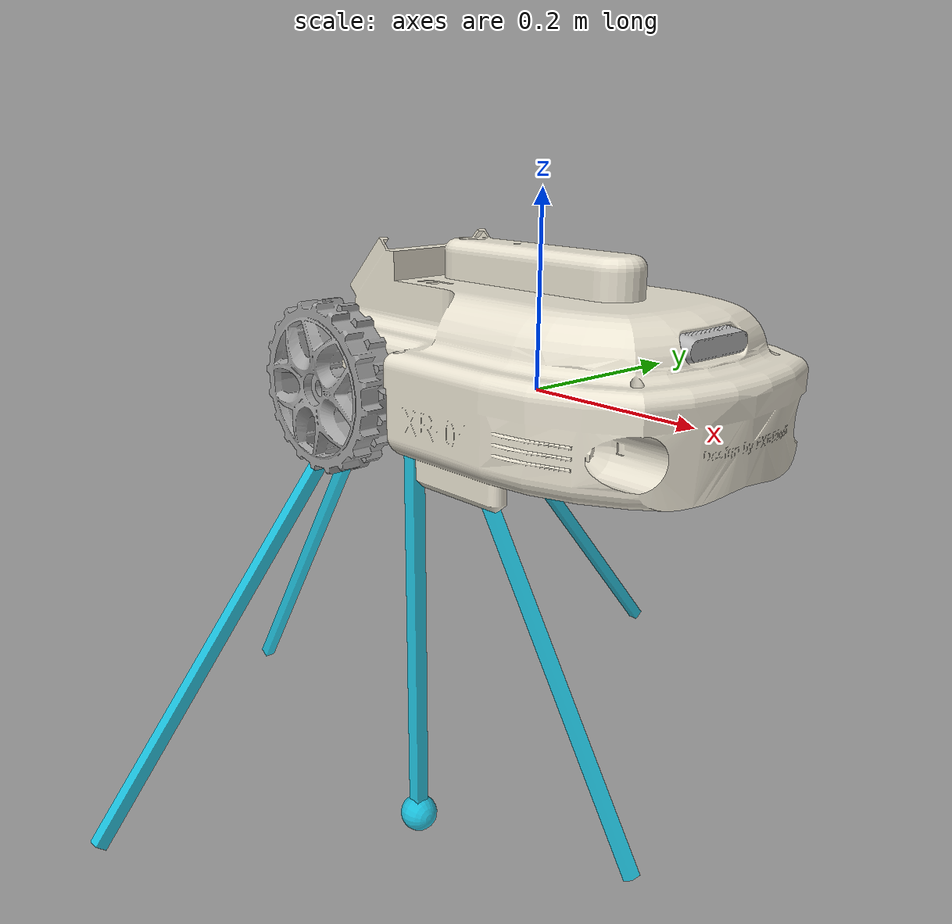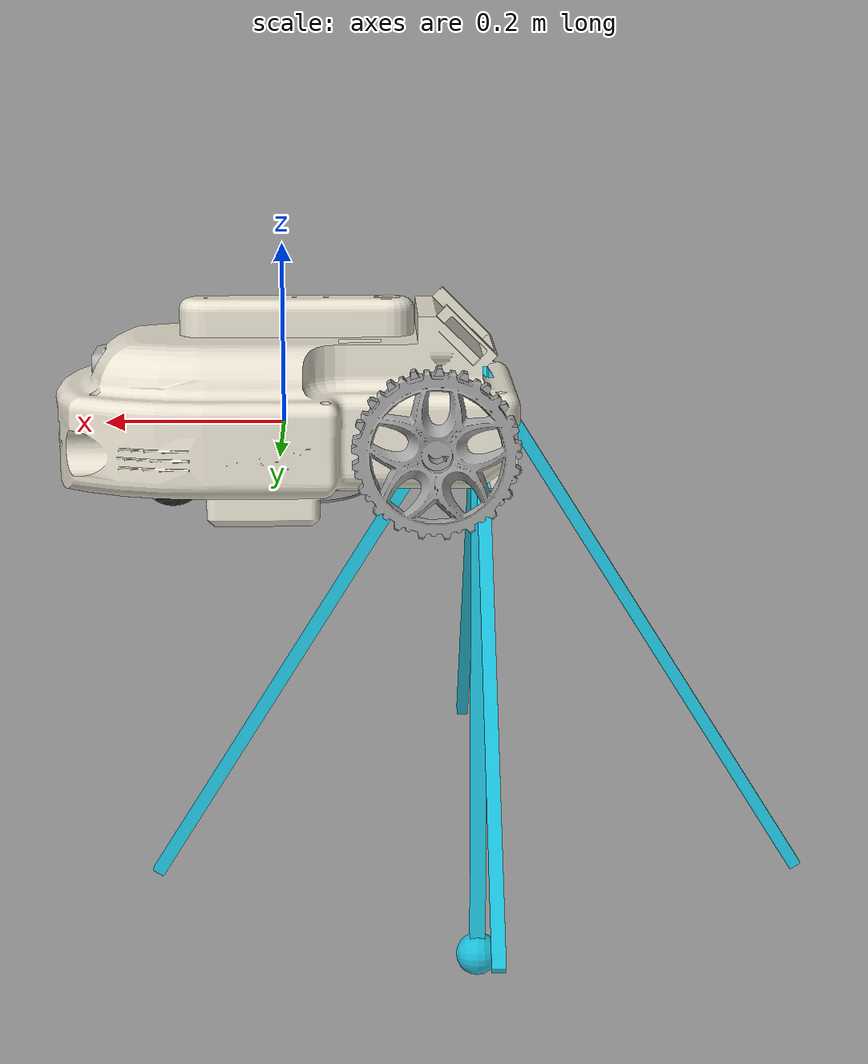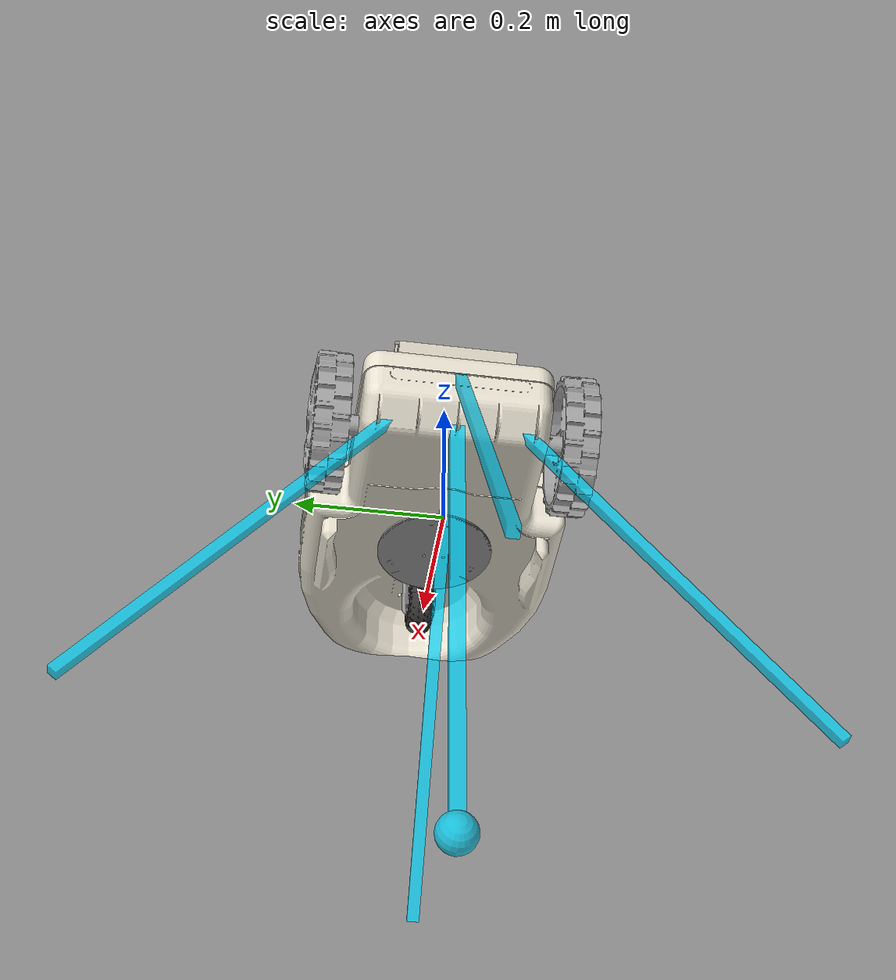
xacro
<?xml version="1.0" ?>
<!-- 機器人本體定義 (URDF) -->
<!-- 從 robot.urdf 轉換為 Xacro 格式，並新增 GPS link / base_footprint -->
<robot name="mower_robot" xmlns:xacro="http://www.ros.org/wiki/xacro">

  <!--  Material 定義                                                -->
  <material name="base_link_material">
    <color rgba="0.901961 0.878431 0.811765 1"/>
  </material>
  <material name="wheel_material">
    <color rgba="0.627451 0.627451 0.627451 1"/>
  </material>
  <material name="dark_material">
    <color rgba="0.207843 0.192157 0.192157 1"/>
  </material>
  <material name="grey_material">
    <color rgba="0.678431 0.678431 0.678431 1"/>
  </material>
  <material name="camera_material">
    <color rgba="0.701961 0.701961 0.701961 1"/>
  </material>
  <material name="black_material">
    <color rgba="0 0 0 1"/>
  </material>
  <material name="silver_material">
    <color rgba="0.6 0.6 0.6 1"/>
  </material>
  <material name="camera_direction_material">
    <color rgba="0 0.85 1 0.75"/>
  </material>

  <!--  base_footprint（Nav2 必要）                                  -->
  <link name="base_footprint"/>

  <joint name="base_footprint_joint" type="fixed">
    <!-- Rotate CAD frame so base_footprint +X is the mower forward direction. -->
    <origin xyz="0 0 0" rpy="0 0 1.5708"/>
    <parent link="base_footprint"/>
    <child link="base_link"/>
  </joint>

  <!--  base_link                                                    -->
  <link name="base_link">
    <inertial>
      <origin xyz="0 0 0" rpy="0 0 0"/>
      <mass value="5.0"/>
      <inertia ixx="0.1" ixy="0" ixz="0" iyy="0.1" iyz="0" izz="0.1"/>
    </inertial>
    <visual>
      <origin xyz="0.0145303 0.0155339 -0.0929528" rpy="0 -0 0"/>
      <geometry>
        <mesh filename="package://mower_description/mower_robot/assets/base_link.stl"/>
      </geometry>
      <material name="base_link_material"/>
    </visual>
    <collision>
      <origin xyz="0.0145303 0.0155339 -0.0929528" rpy="0 -0 0"/>
      <geometry>
        <mesh filename="package://mower_description/mower_robot/assets/base_link.stl"/>
      </geometry>
    </collision>
  </link>

  <!--  左輪 left_wheel_link                                        -->
  <link name="left_wheel_link">
    <inertial>
      <origin xyz="-3.1524e-07 9.95807e-06 -0.0428781" rpy="0 0 0"/>
      <mass value="0.368513"/>
      <inertia ixx="0.000961278" ixy="3.92e-09" ixz="6.596e-09"
               iyy="0.000961335" iyz="1.3009e-08" izz="0.00177481"/>
    </inertial>
    <visual>
      <origin xyz="0 0 -0.025531" rpy="0 -0 -0"/>
      <geometry>
        <mesh filename="package://mower_description/mower_robot/assets/left_wheel_link.stl"/>
      </geometry>
      <material name="wheel_material"/>
    </visual>
    <collision>
      <origin xyz="0 0 -0.025531" rpy="0 -0 -0"/>
      <geometry>
        <mesh filename="package://mower_description/mower_robot/assets/left_wheel_link.stl"/>
      </geometry>
    </collision>
  </link>

  <!-- Joint: base_link → left_wheel_link -->
  <!-- rpy x=+1.5708: 輪子朝外安裝，Z 軸向內，需用 0 0 -1 讓正速度=前進 -->
  <joint name="left_wheel_joint" type="continuous">
    <origin xyz="0.13253 0.165534 -0.00295275" rpy="1.5708 1.22081 -1.5708"/>
    <parent link="base_link"/>
    <child link="left_wheel_link"/>
    <axis xyz="0 0 -1"/>
    <limit effort="10" velocity="6"/>
  </joint>

  <!--  右輪 right_wheel_link                                       -->
  <link name="right_wheel_link">
    <inertial>
      <origin xyz="-3.1524e-07 9.95807e-06 -0.0428781" rpy="0 0 0"/>
      <mass value="0.368513"/>
      <inertia ixx="0.000961278" ixy="3.92e-09" ixz="6.596e-09"
               iyy="0.000961335" iyz="1.3009e-08" izz="0.00177481"/>
    </inertial>
    <visual>
      <origin xyz="0 0 -0.025531" rpy="0 -0 0"/>
      <geometry>
        <mesh filename="package://mower_description/mower_robot/assets/right_wheel_link.stl"/>
      </geometry>
      <material name="wheel_material"/>
    </visual>
    <collision>
      <origin xyz="0 0 -0.025531" rpy="0 -0 0"/>
      <geometry>
        <mesh filename="package://mower_description/mower_robot/assets/right_wheel_link.stl"/>
      </geometry>
    </collision>
  </link>

  <!-- Joint: base_link → right_wheel_link -->
  <!-- rpy x=-1.5708: 輪子朝外安裝（另一側），Z 軸向外，用 0 0 1 讓正速度=前進 -->
  <joint name="right_wheel_joint" type="continuous">
    <origin xyz="-0.10347 0.165534 -0.00295275" rpy="-1.5708 1.51106 -1.5708"/>
    <parent link="base_link"/>
    <child link="right_wheel_link"/>
    <axis xyz="0 0 1"/>
    <limit effort="10" velocity="6"/>
  </joint>

  <!--  caster_yaw_link                                             -->
  <link name="caster_yaw_link">
    <inertial>
      <origin xyz="-0.00894349 -1.10704e-07 -0.0235114" rpy="0 0 0"/>
      <mass value="0.205996"/>
      <inertia ixx="0.000152202" ixy="-7.97e-10" ixz="-3.03099e-05"
               iyy="0.000161102" iyz="-1.164e-09" izz="0.000106547"/>
    </inertial>
    <visual>
      <origin xyz="0 0 0" rpy="0 -0 0"/>
      <geometry>
        <mesh filename="package://mower_description/mower_robot/assets/caster_yaw_link.stl"/>
      </geometry>
      <material name="grey_material"/>
    </visual>
    <collision>
      <origin xyz="0 0 0" rpy="0 -0 0"/>
      <geometry>
        <mesh filename="package://mower_description/mower_robot/assets/caster_yaw_link.stl"/>
      </geometry>
    </collision>
  </link>

  <!-- Joint: base_link → caster_yaw_link -->
  <joint name="caster_yaw_joint" type="revolute">
    <origin xyz="0.0145303 -0.150966 0.0155472" rpy="0 -0 -1.5708"/>
    <parent link="base_link"/>
    <child link="caster_yaw_link"/>
    <axis xyz="0 0 1"/>
    <limit effort="10" velocity="6" lower="-3.14159" upper="3.14159"/>
  </joint>

  <!--  caster_wheel_link                                           -->
  <link name="caster_wheel_link">
    <inertial>
      <origin xyz="2.3994e-08 -1.69119e-07 -0.0164994" rpy="0 0 0"/>
      <mass value="0.138953"/>
      <inertia ixx="5.52912e-05" ixy="-1.43e-10" ixz="-5.3e-11"
               iyy="5.52922e-05" iyz="3.05e-10" izz="8.94246e-05"/>
    </inertial>
    <visual>
      <origin xyz="0 0 -0.0165" rpy="-1.5708 -1.5708 0"/>
      <geometry>
        <mesh filename="package://mower_description/mower_robot/assets/caster_wheel_link.stl"/>
      </geometry>
      <material name="dark_material"/>
    </visual>
    <collision>
      <origin xyz="0 0 -0.0165" rpy="-1.5708 -1.5708 0"/>
      <geometry>
        <mesh filename="package://mower_description/mower_robot/assets/caster_wheel_link.stl"/>
      </geometry>
    </collision>
  </link>

  <!-- Joint: caster_yaw_link → caster_wheel_link -->
  <joint name="caster_wheel_joint" type="continuous">
    <origin xyz="-0.0255 0.0170526 -0.0695" rpy="1.5708 1.52376 -3.14159"/>
    <parent link="caster_yaw_link"/>
    <child link="caster_wheel_link"/>
    <axis xyz="0 0 1"/>
    <limit effort="10" velocity="6"/>
  </joint>

  <!--  depth_camera_link                                           -->
  <link name="depth_camera_link">
    <inertial>
      <origin xyz="-0.0210924 2.34653e-05 -0.0116574" rpy="0 0 0"/>
      <mass value="0.292898"/>
      <inertia ixx="2.81585e-05" ixy="-1.4716e-08" ixz="-1.69117e-06"
               iyy="0.000189634" iyz="8.1277e-08" izz="0.000187962"/>
    </inertial>
    <visual>
      <origin xyz="-0.0225 0 -0.02505" rpy="3.14159 -0 0"/>
      <geometry>
        <mesh filename="package://mower_description/mower_robot/assets/depth_camera_link.stl"/>
      </geometry>
      <material name="camera_material"/>
    </visual>
    <collision>
      <origin xyz="-0.0225 0 -0.02505" rpy="3.14159 -0 0"/>
      <geometry>
        <mesh filename="package://mower_description/mower_robot/assets/depth_camera_link.stl"/>
      </geometry>
    </collision>
  </link>

  <!-- Joint: base_link → depth_camera_link -->
  <joint name="depth_camera_joint" type="fixed">
    <origin xyz="0.0370303 -0.183912 0.0740472" rpy="-1.5708 -0 0"/>
    <parent link="base_link"/>
    <child link="depth_camera_link"/>
  </joint>

  <!--  back_camera_link                                            -->
  <link name="back_camera_link">
    <inertial>
      <origin xyz="0.000174127 0.000320936 -0.0147836" rpy="0 0 0"/>
      <mass value="0.0107094"/>
      <inertia ixx="9.78237e-07" ixy="-2.6898e-08" ixz="1.5856e-08"
               iyy="9.49758e-07" iyz="2.9225e-08" izz="1.19328e-06"/>
    </inertial>
    <visual>
      <origin xyz="0 0 -0.0202866" rpy="0 -0 0"/>
      <geometry>
        <mesh filename="package://mower_description/mower_robot/assets/back_camera_link.stl"/>
      </geometry>
      <material name="camera_material"/>
    </visual>
    <collision>
      <origin xyz="0 0 -0.0202866" rpy="0 -0 0"/>
      <geometry>
        <mesh filename="package://mower_description/mower_robot/assets/back_camera_link.stl"/>
      </geometry>
    </collision>
  </link>

  <!-- Joint: base_link → back_camera_link -->
  <joint name="back_camera_joint" type="fixed">
    <origin xyz="0.0145303 0.218752 0.0620472" rpy="-1.5708 -0 0"/>
    <parent link="base_link"/>
    <child link="back_camera_link"/>
  </joint>

  <link name="back_camera_rotated_frame">
    <visual name="back_camera_direction_center">
      <origin xyz="0.35 0 0" rpy="0 0 0"/>
      <geometry>
        <box size="0.7 0.018 0.018"/>
      </geometry>
      <material name="camera_direction_material"/>
    </visual>
    <visual name="back_camera_direction_left">
      <origin xyz="0.267 0.225 0" rpy="0 0 0.6981"/>
      <geometry>
        <box size="0.7 0.014 0.014"/>
      </geometry>
      <material name="camera_direction_material"/>
    </visual>
    <visual name="back_camera_direction_right">
      <origin xyz="0.267 -0.225 0" rpy="0 0 -0.6981"/>
      <geometry>
        <box size="0.7 0.014 0.014"/>
      </geometry>
      <material name="camera_direction_material"/>
    </visual>
    <visual name="back_camera_direction_top">
      <origin xyz="0.296 0 0.187" rpy="0 -0.561 0"/>
      <geometry>
        <box size="0.7 0.014 0.014"/>
      </geometry>
      <material name="camera_direction_material"/>
    </visual>
    <visual name="back_camera_direction_bottom">
      <origin xyz="0.296 0 -0.187" rpy="0 0.561 0"/>
      <geometry>
        <box size="0.7 0.014 0.014"/>
      </geometry>
      <material name="camera_direction_material"/>
    </visual>
    <visual name="back_camera_direction_tip">
      <origin xyz="0.7 0 0" rpy="0 0 0"/>
      <geometry>
        <sphere radius="0.025"/>
      </geometry>
      <material name="camera_direction_material"/>
    </visual>
  </link>

  <joint name="back_camera_rotated_joint" type="fixed">
    <origin xyz="0 0 0" rpy="0 0 1.5708"/>
    <parent link="back_camera_link"/>
    <child link="back_camera_rotated_frame"/>
  </joint>

  <!--  imu_link                                                    -->
  <link name="imu_link">
    <inertial>
      <origin xyz="-0.000251465 3.703e-09 -0.00531321" rpy="0 0 0"/>
      <mass value="0.205582"/>
      <inertia ixx="3.85914e-05" ixy="1.7e-11" ixz="-3.105e-09"
               iyy="4.59431e-05" iyz="-1e-12" izz="7.98412e-05"/>
    </inertial>
    <visual>
      <origin xyz="-0.000256254 0 -0.005" rpy="3.14159 -0 0"/>
      <geometry>
        <mesh filename="package://mower_description/mower_robot/assets/imu_link.stl"/>
      </geometry>
      <material name="black_material"/>
    </visual>
    <collision>
      <origin xyz="-0.000256254 0 -0.005" rpy="3.14159 -0 0"/>
      <geometry>
        <mesh filename="package://mower_description/mower_robot/assets/imu_link.stl"/>
      </geometry>
    </collision>
  </link>

  <!-- Joint: base_link → imu_link -->
  <joint name="imu_joint" type="fixed">
    <origin xyz="0.015897 0.209534 -0.0129528" rpy="3.14159 -0 0"/>
    <parent link="base_link"/>
    <child link="imu_link"/>
  </joint>

  <!--  NEW: gps_link（GPS 天線位置）                               -->
  <link name="gps_link">
    <inertial>
      <origin xyz="0 0 0" rpy="0 0 0"/>
      <mass value="0.05"/>
      <inertia ixx="1e-6" ixy="0" ixz="0" iyy="1e-6" iyz="0" izz="1e-6"/>
    </inertial>
    <visual>
      <origin xyz="0 0 0" rpy="0 0 0"/>
      <geometry>
        <box size="0.03 0.03 0.01"/>
      </geometry>
      <material name="black_material"/>
    </visual>
    <collision>
      <origin xyz="0 0 0" rpy="0 0 0"/>
      <geometry>
        <box size="0.03 0.03 0.01"/>
      </geometry>
    </collision>
  </link>

  <!-- Joint: base_link → gps_link（放在機器人頂部中央）-->
  <joint name="gps_joint" type="fixed">
    <origin xyz="0.0 0.0 0.12" rpy="0 0 0"/>
    <parent link="base_link"/>
    <child link="gps_link"/>
  </joint>

  <!--  connector + blade_hub（割草機刀盤）                         -->
  <link name="connector">
    <inertial>
      <origin xyz="-8.04e-10 -0.000464193 -0.0128143" rpy="0 0 0"/>
      <mass value="0.0120859"/>
      <inertia ixx="1.19168e-06" ixy="0" ixz="0"
               iyy="1.267e-06" iyz="2.3234e-08" izz="2.01476e-06"/>
    </inertial>
    <visual>
      <origin xyz="0 0 0" rpy="3.14159 -0 0"/>
      <geometry>
        <mesh filename="package://mower_description/mower_robot/assets/connector.stl"/>
      </geometry>
      <material name="silver_material"/>
    </visual>
    <collision>
      <origin xyz="0 0 0" rpy="3.14159 -0 0"/>
      <geometry>
        <mesh filename="package://mower_description/mower_robot/assets/connector.stl"/>
      </geometry>
    </collision>
  </link>

  <link name="blade_hub">
    <inertial>
      <origin xyz="-0 -0 -0.00147225" rpy="0 0 0"/>
      <mass value="0.0672483"/>
      <inertia ixx="9.33182e-05" ixy="0" ixz="0"
               iyy="9.33182e-05" iyz="0" izz="0.000186538"/>
    </inertial>
    <visual>
      <origin xyz="0 0 -0.003" rpy="3.14159 -0 0"/>
      <geometry>
        <mesh filename="package://mower_description/mower_robot/assets/blade_hub.stl"/>
      </geometry>
      <material name="silver_material"/>
    </visual>
    <collision>
      <origin xyz="0 0 -0.003" rpy="3.14159 -0 0"/>
      <geometry>
        <mesh filename="package://mower_description/mower_robot/assets/blade_hub.stl"/>
      </geometry>
    </collision>
  </link>

  <!-- Joint: connector → blade_hub -->
  <joint name="pad_joint" type="fixed">
    <origin xyz="-0 0 -0.018" rpy="0 -0 -0"/>
    <parent link="connector"/>
    <child link="blade_hub"/>
  </joint>

  <!-- Joint: base_link → connector -->
  <!-- continuous: 刀盤需要無限旋轉，不能用 revolute（有 -π~π 限制） -->
  <joint name="mower_joint" type="continuous">
    <origin xyz="0.0145303 0.0155339 -0.0549528" rpy="0 -0 3.14159"/>
    <parent link="base_link"/>
    <child link="connector"/>
    <axis xyz="0 0 1"/>
    <limit effort="100" velocity="6"/>
  </joint>

</robot>
